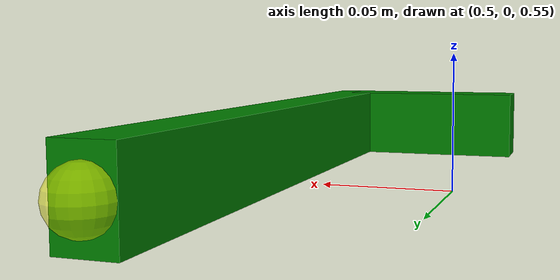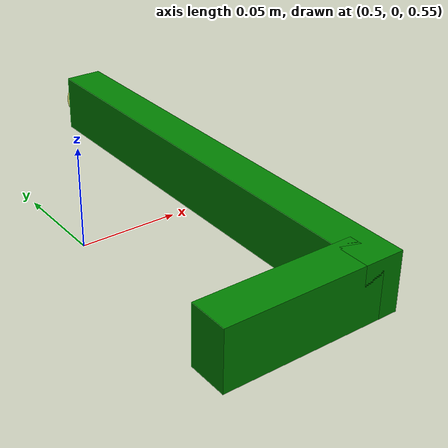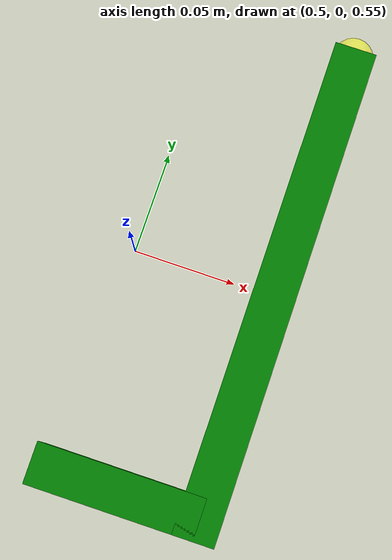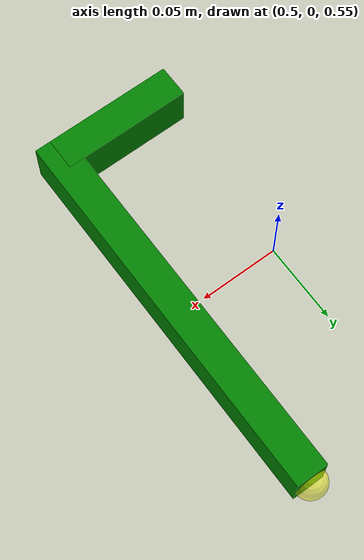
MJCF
<mujoco>
    <worldbody>
        <body name="beam">
            <joint name="OBJTx" pos="0 0 0" axis="1 0 0" type="slide" limited="false" damping="0.01" />
            <joint name="OBJTy" pos="0 0 0" axis="0 1 0" type="slide" limited="true" range="-0.2 0" damping="0.01" />
            <joint name="OBJTz" pos="0 0 0" axis="0 0 1" type="slide" limited="false" damping="0.01" />
            <joint name="OBJRx" pos="0 0 0" axis="1 0 0" limited="true" damping="0.1" range="0 0.01"/>
            <joint name="OBJRy" pos="0 0 0" axis="0 1 0" limited="true" damping="0.1" range="0 0.01"/>
            <joint name="OBJRz" pos="0 0 0" axis="0 0 1" limited="true" damping="0.1" range="0 0.01"/>

            <geom name="beam" type="box" pos="0.57 0 0.565" size="0.01 0.12 0.015" rgba="0 0.5 0 0.9" friction="0.01 0.1 0.1"/>
            <geom name="beam_handle" type="box" pos="0.53 -0.11 0.565" size="0.04 0.01 0.015" rgba="0 0.5 0 0.9"/>

            <site name="beam_left" pos="0.57 0.12 0.565" size="0.01" rgba="1 1 0 0.5" type="sphere" />
            <site name="beam_right" pos="0.51 -0.11 0.565" size="0.01" rgba="1 0 0 0.5" type="sphere" />
        </body>
    </worldbody>
</mujoco>
